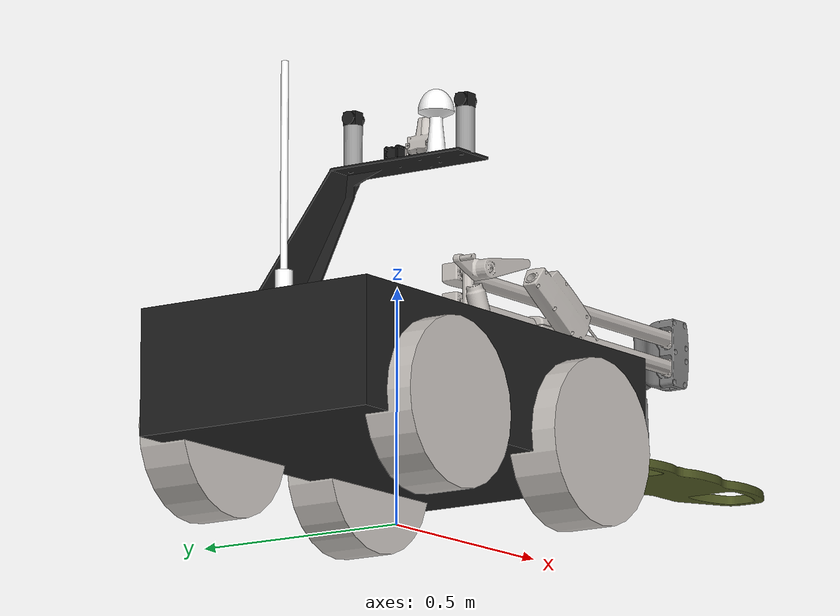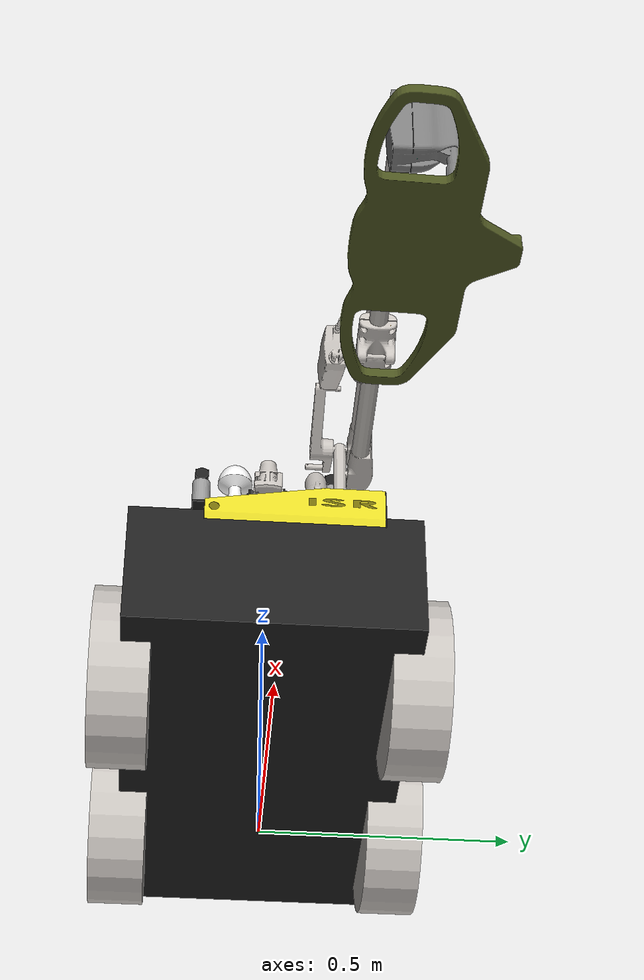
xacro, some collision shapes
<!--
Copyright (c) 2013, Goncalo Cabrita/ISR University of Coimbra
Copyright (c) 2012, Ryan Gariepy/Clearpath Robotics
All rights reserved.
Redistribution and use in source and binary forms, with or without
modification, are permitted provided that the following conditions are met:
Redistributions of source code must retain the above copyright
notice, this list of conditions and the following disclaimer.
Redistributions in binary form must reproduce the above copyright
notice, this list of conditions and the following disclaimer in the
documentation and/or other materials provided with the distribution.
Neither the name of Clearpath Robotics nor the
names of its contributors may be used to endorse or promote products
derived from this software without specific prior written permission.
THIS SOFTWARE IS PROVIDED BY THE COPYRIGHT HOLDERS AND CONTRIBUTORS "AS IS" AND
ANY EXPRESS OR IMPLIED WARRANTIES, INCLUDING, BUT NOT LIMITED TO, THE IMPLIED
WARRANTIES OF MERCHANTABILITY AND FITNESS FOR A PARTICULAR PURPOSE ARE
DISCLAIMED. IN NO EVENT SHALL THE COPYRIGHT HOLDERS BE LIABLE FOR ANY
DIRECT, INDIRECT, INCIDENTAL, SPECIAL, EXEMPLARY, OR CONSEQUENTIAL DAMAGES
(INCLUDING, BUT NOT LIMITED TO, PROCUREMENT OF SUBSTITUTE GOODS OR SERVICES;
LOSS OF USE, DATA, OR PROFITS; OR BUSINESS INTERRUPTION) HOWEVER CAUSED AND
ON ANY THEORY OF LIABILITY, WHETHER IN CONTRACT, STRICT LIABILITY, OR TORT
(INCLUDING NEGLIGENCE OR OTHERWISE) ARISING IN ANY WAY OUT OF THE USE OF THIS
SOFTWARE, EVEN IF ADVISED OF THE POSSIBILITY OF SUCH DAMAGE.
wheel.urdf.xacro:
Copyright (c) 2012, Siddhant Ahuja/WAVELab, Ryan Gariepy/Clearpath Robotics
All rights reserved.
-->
<?xml version="1.0"?>

<robot

    xmlns:xi="http://www.w3.org/2001/XInclude"
    xmlns:gazebo="http://playerstage.sourceforge.net/gazebo/xmlschema/#gz"
    xmlns:model="http://playerstage.sourceforge.net/gazebo/xmlschema/#model"
    xmlns:sensor="http://playerstage.sourceforge.net/gazebo/xmlschema/#sensor"
    xmlns:body="http://playerstage.sourceforge.net/gazebo/xmlschema/#body"
    xmlns:geom="http://playerstage.sourceforge.net/gazebo/xmlschema/#geom"
    xmlns:joint="http://playerstage.sourceforge.net/gazebo/xmlschema/#joint"
    xmlns:controller="http://playerstage.sourceforge.net/gazebo/xmlschema/#controller"
    xmlns:interface="http://playerstage.sourceforge.net/gazebo/xmlschema/#interface"
    xmlns:rendering="http://playerstage.sourceforge.net/gazebo/xmlschema/#rendering"
    xmlns:renderable="http://playerstage.sourceforge.net/gazebo/xmlschema/#renderable"
    xmlns:physics="http://playerstage.sourceforge.net/gazebo/xmlschema/#physics"
    xmlns:xacro="http://ros.org/wiki/xacro" name="husky">

    <!-- Included URDF/XACRO Files -->
    <xacro:include filename="$(find hratc2017_framework)/urdf/husky_parts/materials.urdf.xacro" />
    <xacro:include filename="$(find hratc2017_framework)/urdf/husky_parts/wheel.urdf.xacro" />
    <xacro:include filename="$(find hratc2017_framework)/urdf/husky_parts/parts.urdf.xacro" />
    <xacro:include filename="$(find hratc2017_framework)/urdf/fsr_husky_parts/husky_bridge.urdf.xacro" />
    <xacro:include filename="$(find hratc2017_framework)/urdf/fsr_husky_parts/tim55x.urdf.xacro" />
    <xacro:include filename="$(find hratc2017_framework)/urdf/fsr_husky_parts/alfa_tube2h.urdf.xacro" />
    <xacro:include filename="$(find hratc2017_framework)/urdf/fsr_husky_parts/pointgrey_flea3.urdf.xacro" />
    <xacro:include filename="$(find hratc2017_framework)/urdf/fsr_husky_parts/gps_antenna.urdf.xacro" />
    <xacro:include filename="$(find hratc2017_framework)/urdf/fsr_husky_parts/tilt.urdf.xacro" />
    <xacro:include filename="$(find hratc2017_framework)/urdf/fsr_husky_parts/mti.urdf.xacro" />
    <xacro:include filename="$(find hratc2017_framework)/urdf/arm/fsr_husky_arm.urdf.xacro" />
    <xacro:include filename="$(find hratc2017_framework)/urdf/fsr_husky_parts/front_cover.urdf.xacro" />
    <xacro:include filename="$(find hratc2017_framework)/urdf/fsr_husky_parts/top_cover.urdf.xacro" />

    <!-- PROPERTY LIST -->
    <!--All units in m-kg-s-radians unit system -->
    <property name="M_PI" value="3.1415926535897931" />

    <!-- Main Body-base-->
    <!-- Location of com : center of mass -->
    <property name="base_x_com" value="-0.08748000" />
    <property name="base_y_com" value="-0.00085000" />
    <property name="base_z_com" value="0.09947000" />

    <!-- Size of the base-->
    <property name="base_x_size" value="0.98740000" />
    <property name="base_y_size" value="0.57090000" />
    <property name="base_z_size" value="0.24750000" />

    <!--Weight of the base-->
    <property name="base_mass" value="33.45489000" /> <!-- in kg-->

    <!--Inertial values for the base at center of mass, aligned with coordinate system. Units are kg*m^2-->
    <property name="base_ixx_com_cs" value="0.60216370" />
    <property name="base_ixy_com_cs" value="-0.02364198" />
    <property name="base_ixz_com_cs" value="-0.11972132" />
    <property name="base_iyy_com_cs" value="1.73859574" />
    <property name="base_iyz_com_cs" value="-0.00154437" />
    <property name="base_izz_com_cs" value="2.02955229" />

    <!-- BASE-FOOTPRINT -->
    <!-- base_footprint is a fictitious link(frame) that is on the ground right below base_link origin, navigation stack depends on this frame -->
    <link name="base_footprint">

        <visual>
            <origin xyz="0 0 0" rpy="0 0 0" />
            <geometry>
                <box size="0.001 0.001 0.001" />
            </geometry>
        </visual>
    </link>

    <gazebo reference="base_footprint">
        <turnGravityOff>false</turnGravityOff>
    </gazebo>

    <joint name="base_footprint_joint" type="fixed">
		<origin xyz="0 0 ${wheel_x_size/2 - base_z_origin_to_wheel_origin}" rpy="0 0 0" />
        <parent link="base_footprint"/>
        <child link="base_link" />
    </joint>

    <!-- BASE-LINK -->
    <!--Actual body/chassis of the robot-->
    <link name="base_link">
        <inertial>
            <mass value="${base_mass}" />
            <origin xyz="${base_x_com} ${base_y_com} ${base_z_com}" />
            <inertia ixx="${base_ixx_com_cs}" ixy="${base_ixy_com_cs}" ixz="${base_ixz_com_cs}"
                iyy="${base_iyy_com_cs}" iyz="${base_iyz_com_cs}" izz="${base_izz_com_cs}" />
        </inertial>

        <visual>
            <origin xyz="0 0 0" rpy="0 0 0" />
            <geometry>
		<mesh filename="package://hratc2017_framework/models/husky_parts/base_link.stl" />
            </geometry>
            <material name="Black" />
        </visual>

		<collision>
			<origin xyz="0 0 ${wheel_x_size/2 - base_z_origin_to_wheel_origin - 0.02}" rpy="0 0 0 " />
			<geometry>
				<box size = "${base_x_size+0.02} ${base_y_size} ${base_z_size + 0.02}"/> <!--making it slightly bigger in x and z direction-->
			</geometry>
		</collision>
    </link>
    <gazebo reference="base_link">
        <material>Gazebo/FlatBlack</material>
        <turnGravityOff>false</turnGravityOff>
    </gazebo>

    <!-- WHEEL macros -->
	<husky_wheel fb="back" lr="left" parent="base_link" translateX="-1" translateY="1" flipY="-1"/>
	<husky_wheel fb="back" lr="right" parent="base_link" translateX="-1" translateY="-1" flipY="-1"/>
	<husky_wheel fb="front" lr="left" parent="base_link" translateX="1" translateY="1" flipY="-1"/>
	<husky_wheel fb="front" lr="right" parent="base_link" translateX="1" translateY="-1" flipY="-1"/>

    <!-- DECORATIONS -->
    <!-- Top Plate -->
    <husky_part parent="base_footprint" name="top_plate" mesh="top_plate"
          colour="Yellow"
          translateX="0.0" translateY="0.0" translateZ="${wheel_x_size/2 - base_z_origin_to_wheel_origin}"
          rotateX="0.0" rotateY="0.0" rotateZ="0.0"/>
    <gazebo reference="base_footprint_top_plate_part">
        <material>Gazebo/Yellow</material>
    </gazebo>

    <!-- User Rail -->
    <husky_part parent="base_footprint" name="user_rail" mesh="user_rail"
          colour="DarkGray"
          translateX="0.272" translateY="0.0" translateZ="${0.245 + wheel_x_size/2 - base_z_origin_to_wheel_origin}"
          rotateX="0.0" rotateY="0.0" rotateZ="0.0"/>
    <gazebo reference="base_footprint_user_rail_part">
        <material>Gazebo/Grey</material>
    </gazebo>

    <!-- Bumpers -->
    <husky_part parent="base_footprint" name="rear_bumper" mesh="bumper"
          colour="DarkGray"
          translateX="-0.48" translateY="0.0" translateZ="${0.091 + wheel_x_size/2 - base_z_origin_to_wheel_origin}"
          rotateX="0.0" rotateY="0.0" rotateZ="3.14"/>
    <gazebo reference="base_footprint_rear_bumper_part">
        <material>Gazebo/FlatBlack</material>
    </gazebo>

    <gazebo>
	<plugin name="husky_diff_controller" filename="libhusky_gazebo_plugins.so">
	    <alwaysOn>true</alwaysOn>
            <updateRate>100.0</updateRate>
            <backLeftJoint>joint_back_left_wheel</backLeftJoint>
            <backRightJoint>joint_back_right_wheel</backRightJoint>
            <frontLeftJoint>joint_front_left_wheel</frontLeftJoint>
            <frontRightJoint>joint_front_right_wheel</frontRightJoint>
            <wheelSeparation>${base_y_size}</wheelSeparation>
            <wheelDiameter>${wheel_x_size}</wheelDiameter>
            <torque>35</torque>
        </plugin>
    </gazebo>

    <!-- FSR Husky Stuff -->

    <!-- BRIDGE macros -->
    <husky_bridge parent="base_link" x="-0.27" y="0" z="${base_z_size}" rx="0" ry="0" rz="0" />

    <!-- Top cover macros -->
    <top_cover parent="base_footprint" x="-0.18" y="0" z="${base_z_size}" rx="0" ry="0" rz="0" />

    <!-- Front cover macros -->
    <front_cover parent="base_footprint" x="0" y="0" z="${base_z_size}" rx="0" ry="0" rz="0" />

    <!-- MTi macro -->
    <mti parent="top_cover" x="0.2295" y="0.0" z="0.157" rx="0" ry="0" rz="0" />

    <!-- CAMERA macros -->
    <pointgrey_flea3 prefix="right" parent="husky_bridge" base_offset="-0.145" camera_offset="-0.00" camera_r="0" camera_p="0" camera_y="0" />
    <pointgrey_flea3 prefix="left" parent="husky_bridge" base_offset="0.145" camera_offset="0.00" camera_r="0" camera_p="0" camera_y="0" />

    <!-- Tilt macro -->
    <tilt parent="husky_bridge" x="0.0" y="-0.00601" z="-0.647711" rx="0" ry="0" rz="${M_PI/2}" />

    <!-- TIM macro -->
    <tim_55x parent="tilt_link" x="0.0" y="0.0" z="0.0" rx="0" ry="0" rz="0" />

    <!-- GPS macro -->
    <gps_antenna parent="husky_bridge" x="0" y="-0.07" z="0.0" rx="0" ry="0" rz="0" />

    <!-- WiFi Antenna -->
    <alfa_tube2h parent="husky_bridge" x="-0.21" y="0.17" z="-0.38" rx="0" ry="0" rz="0" />

    <!-- FSR Husky De-mining Arm -->
    <fsr_husky_arm parent="base_link" x="0.0" y="0.0" z="0.0" rx="0" ry="0" rz="${M_PI/2}" />

    <gazebo>
      <plugin name="gazebo_ros_control" filename="libgazebo_ros_control.so">
      </plugin>
    </gazebo>

</robot>

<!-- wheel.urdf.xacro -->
<robot xmlns:sensor="http://playerstage.sourceforge.net/gazebo/xmlschema/#sensor"
	xmlns:controller="http://playerstage.sourceforge.net/gazebo/xmlschema/#controller"
	xmlns:interface="http://playerstage.sourceforge.net/gazebo/xmlschema/#interface"
	xmlns:xacro="http://ros.org/wiki/xacro" name="husky_wheel">

	<property name="M_PI" value="3.14159"/>

	<!-- Wheel -->

	<property name="wheel_x_com" value="0.00000000" /> <!-- com : center of mass -->
	<property name="wheel_y_com" value="0.00000000" /> <!-- com : center of mass -->
	<property name="wheel_z_com" value="0.00019000" /> <!-- com : center of mass -->

	<property name="wheel_x_size" value="0.35550000" />
	<property name="wheel_y_size" value="0.35550000" />
	<property name="wheel_z_size" value="0.11430000" />

	<property name="wheel_mass" value="2.63657000" /> <!-- in kg-->

	<property name="wheel_ixx_com_cs" value="0.02466885" /> <!-- at center of mass aligned with coordinate system, kg*m^2-->
	<property name="wheel_ixy_com_cs" value="0.00000000" /> <!-- at center of mass aligned with coordinate system, kg*m^2-->
	<property name="wheel_ixz_com_cs" value="0.00000000" /> <!-- at center of mass aligned with coordinate system, kg*m^2-->
	<property name="wheel_iyy_com_cs" value="0.02466885" /> <!-- at center of mass aligned with coordinate system, kg*m^2-->
	<property name="wheel_iyz_com_cs" value="0.00000000" /> <!-- at center of mass aligned with coordinate system, kg*m^2-->
	<property name="wheel_izz_com_cs" value="0.04410576" /> <!-- at center of mass aligned with coordinate system, kg*m^2-->

	<property name="base_x_origin_to_wheel_origin" value="0.25600006" />
	<property name="base_y_origin_to_wheel_origin" value="0.285475" />
	<property name="base_z_origin_to_wheel_origin" value="0.03282508" />

	<xacro:macro name="husky_wheel" params="fb lr parent translateX translateY flipY"> <!--fb : front, back ; lr: left, right -->
		<link name="${fb}_${lr}_wheel">
			<inertial>
				<mass value="${wheel_mass}" />
				<origin xyz="${wheel_x_com} ${wheel_y_com} ${wheel_z_com}" />
				<inertia  ixx="${wheel_ixx_com_cs}" ixy="${wheel_ixy_com_cs}" ixz="${wheel_ixz_com_cs}"
					iyy="${wheel_iyy_com_cs}" iyz="${wheel_iyz_com_cs}" izz="${wheel_izz_com_cs}" />
			</inertial>
			<visual>
				<origin xyz="0 0 0" rpy="${flipY*M_PI} 0 0" />
				<geometry>
					<mesh filename="package://hratc2017_framework/models/husky_parts/wheel.stl" />
				</geometry>
				<material name="DarkGray" />
			</visual>
			<collision>
				<origin xyz="0 0 0" rpy="${flipY*M_PI/2} 0 0" />
				<geometry>
				    <cylinder length="${wheel_z_size}" radius="${wheel_x_size/2}" />
				</geometry>
			</collision>
		</link>

		<gazebo reference="${fb}_${lr}_wheel">
			<mu1 value="1.0"/>
			<mu2 value="1.0"/>
			<kp  value="10000000.0" />
			<kd  value="1.0" />
			<fdir1 value="1 0 0"/>
			<material>Gazebo/Grey</material>
			<turnGravityOff>false</turnGravityOff>
		</gazebo>

		<joint name="joint_${fb}_${lr}_wheel" type="continuous">
			<parent link="${parent}"/>
			<child link="${fb}_${lr}_wheel"/>
			<origin xyz="${translateX * base_x_origin_to_wheel_origin} ${translateY * base_y_origin_to_wheel_origin} ${base_z_origin_to_wheel_origin}" rpy="0 0 0" />
			<axis xyz="0 1 0" rpy="0 0 0" />
			<limit effort="100" velocity="100"/>
			<joint_properties damping="0.0" friction="0.0"/>
		</joint>

		<!-- Transmission is important to link the joints and the controller -->
		<transmission name="joint_${fb}_${lr}_wheel_trans">
			<type>transmission_interface/SimpleTransmission</type>
			<joint name="joint_${fb}_${lr}_wheel" >
			  <hardwareInterface>EffortJointInterface</hardwareInterface>
			  </joint>
			<actuator name="joint_${fb}_${lr}_wheel_motor">
			  <hardwareInterface>EffortJointInterface</hardwareInterface>
			  <mechanicalReduction>1</mechanicalReduction>
			  <motorTorqueConstant>1</motorTorqueConstant>
			</actuator>
		</transmission>

  	</xacro:macro>
</robot>

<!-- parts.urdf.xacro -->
<robot xmlns:sensor="http://playerstage.sourceforge.net/gazebo/xmlschema/#sensor"
	xmlns:controller="http://playerstage.sourceforge.net/gazebo/xmlschema/#controller"
	xmlns:interface="http://playerstage.sourceforge.net/gazebo/xmlschema/#interface"
	xmlns:xacro="http://ros.org/wiki/xacro" name="husky_part">

	<property name="x_com" value="0.00000000" /> <!-- com : center of mass -->
	<property name="y_com" value="0.00000000" /> <!-- com : center of mass -->
	<property name="z_com" value="0.00000000" /> <!-- com : center of mass -->

	<property name="x_size" value="1.0" />
	<property name="y_size" value="1.0" />
	<property name="z_size" value="1.0" />

	<property name="mass" value="0.1" /> <!-- in kg-->

	<property name="ixx_com_cs" value="0.01" /> <!-- at center of mass aligned with coordinate system, kg*m^2-->
	<property name="ixy_com_cs" value="0.0" /> <!-- at center of mass aligned with coordinate system, kg*m^2-->
	<property name="ixz_com_cs" value="0.0" /> <!-- at center of mass aligned with coordinate system, kg*m^2-->
	<property name="iyy_com_cs" value="0.01" /> <!-- at center of mass aligned with coordinate system, kg*m^2-->
	<property name="iyz_com_cs" value="0.00" /> <!-- at center of mass aligned with coordinate system, kg*m^2-->
	<property name="izz_com_cs" value="0.01" /> <!-- at center of mass aligned with coordinate system, kg*m^2-->

	<xacro:macro name="husky_part" params="parent name mesh colour translateX translateY translateZ rotateX rotateY rotateZ">

		<link name="${parent}_${name}_part">
			<inertial>
				<mass value="${mass}" />
				<origin xyz="${x_com} ${y_com} ${z_com}" />
				<inertia ixx="${ixx_com_cs}" ixy="${ixy_com_cs}" ixz="${ixz_com_cs}"
					iyy="${iyy_com_cs}" iyz="${iyz_com_cs}" izz="${izz_com_cs}" />
			</inertial>
			<visual>
				<origin xyz="0 0 0" rpy="0 0 0" />
				<geometry>
					<mesh filename="package://hratc2017_framework/models/husky_parts/${mesh}.stl" />
				</geometry>
				<material name="${colour}" />
			</visual>
			<collision>
				<origin xyz="0 0 0" rpy="0 0 0"/>
				<geometry>
					<box size="0.001 0.001 0.001" /> <!--the collision boundary for parts are taken into account by collision boundary of the base_link-->
				</geometry>
			</collision>
		</link>
		<joint name="${parent}_${name}_joint" type="fixed">
		    <origin xyz="${translateX} ${translateY} ${translateZ}"
		            rpy="${rotateX} ${rotateY} ${rotateZ}" />
		    <parent link="${parent}" />
		    <child link="${parent}_${name}_part" />
		</joint>

  	</xacro:macro>
</robot>

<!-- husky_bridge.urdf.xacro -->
<robot xmlns:sensor="http://playerstage.sourceforge.net/gazebo/xmlschema/#sensor"
	xmlns:controller="http://playerstage.sourceforge.net/gazebo/xmlschema/#controller"
	xmlns:interface="http://playerstage.sourceforge.net/gazebo/xmlschema/#interface"
	xmlns:xacro="http://ros.org/wiki/xacro" name="husky_bridge">

	<!-- Bridge -->

	<xacro:property name="husky_width" value="0.42" />
	<xacro:property name="husky_heigh" value="0.245" />
	<xacro:property name="scale_factor" value="0.001" />
	<xacro:property name="bridge_height" value="0.385" />

	<xacro:macro name="husky_bridge" params="parent x y z rx ry rz">
		<link name="husky_bridge">
			<inertial>
      				<origin xyz="1.3205E-08 -0.12511 0.1844" rpy="0 0 0" />
     				 <mass value="0.41909" />
      				<inertia
       					ixx="0.0062892349956719"
       				 	ixy="4.83251153522436E-09"
        				ixz="-1.00592277086129E-07"
        				iyy="-1.18429869738388E-05"
        				iyz="-0.0188452216523176"
        				izz="1.18429869738408E-05" />
    			</inertial>
			<visual>
      				<origin xyz="-0.31 ${-husky_width/2} ${-husky_heigh-bridge_height}" rpy="1.5708 0 1.5708" />
      				<geometry>
					<mesh filename="package://hratc2017_framework/models/fsr_husky_parts/bridge.STL" scale="${scale_factor} ${scale_factor} ${scale_factor}" />
      				</geometry>
      				<material name="Black" />
    			</visual>
			<collision>
      				<origin xyz="-0.31 ${-husky_width/2} ${-husky_heigh}" rpy="1.5708 0 1.5708" />
      				<geometry>
					<mesh filename="package://hratc2017_framework/models/fsr_husky_parts/bridge.STL" scale="${scale_factor} ${scale_factor} ${scale_factor}" />
      				</geometry>
    			</collision>
		</link>
		<gazebo reference="husky_bridge">
	        	<material>Gazebo/Black</material>
	        	<turnGravityOff>false</turnGravityOff>
    		</gazebo>

		<joint name="joint_husky_bridge" type="fixed">
			<parent link="${parent}"/>
			<child link="husky_bridge"/>
			<origin xyz="${x+0.31} ${y} ${z+bridge_height}" rpy="${rx} ${ry} ${rz}" />
		</joint>

  	</xacro:macro>
</robot>

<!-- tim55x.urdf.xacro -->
<robot xmlns:sensor="http://playerstage.sourceforge.net/gazebo/xmlschema/#sensor"
	xmlns:controller="http://playerstage.sourceforge.net/gazebo/xmlschema/#controller"
	xmlns:interface="http://playerstage.sourceforge.net/gazebo/xmlschema/#interface"
	xmlns:xacro="http://ros.org/wiki/xacro" name="tim_55x">

	<!-- SICK LMS100-->

	<xacro:include filename="$(find hratc2017_framework)/urdf/fsr_husky_parts/common.xacro" />

	<xacro:property name="scale_factor" value="0.001" />

	<xacro:property name="laser_x" value="0.105" />
	<xacro:property name="laser_y" value="0.102" />
	<xacro:property name="laser_z" value="0.152" />
	<xacro:property name="laser_mass" value="1.1" />

	<xacro:macro name="tim_55x" params="parent x y z rx ry rz">
  		<link name="tim_55x">
			<xacro:box_inertial x="${laser_x}" y="${laser_y}" z="${laser_z}" mass="${laser_mass}" />
			<visual>
				<origin xyz="-0.121 -0.075 -0.064" rpy="0 -1.5708 -1.5708" />
				<geometry>
					<mesh filename="package://hratc2017_framework/models/fsr_husky_parts/tim55x.STL" scale="${scale_factor} ${scale_factor} ${scale_factor}" />
				</geometry>
				<material name="DarkGray" />
  			</visual>
    			<collision>
				<origin xyz="-0.121 -0.075 -0.064" rpy="0 -1.5708 -1.5708" />
      				<geometry>
					<mesh filename="package://hratc2017_framework/models/fsr_husky_parts/tim55x.STL" scale="${scale_factor} ${scale_factor} ${scale_factor}" />
      				</geometry>
    			</collision>
  		</link>

		<joint name="joint_tim_55x" type="fixed">
		  <origin xyz="${x+0.054558} ${y+0.022286} ${z}" rpy="${rx+1.5708} ${ry+2.8361E-16} ${rz+1.6214}" />
		  <parent link="${parent}"/>
		  <child link="tim_55x" />
		  <axis xyz="0 0 0" />
		</joint>

		<gazebo reference="tim_55x">
			<material>Gazebo/Grey</material>
			<turnGravityOff>true</turnGravityOff>
    			<sensor type="ray" name="tim_55x">
      				<pose>0 0 0 0 0 0</pose>
      				<visualize>false</visualize>
     	 			<update_rate>15</update_rate>
      				<ray>
        				<scan>
          					<horizontal>
            						<samples>720</samples>
            						<resolution>1</resolution>
            						<min_angle>-1.570796</min_angle>
            						<max_angle>1.570796</max_angle>
          					</horizontal>
        				</scan>
        				<range>
          					<min>0.05</min>
          					<max>10.0</max>
          					<resolution>0.01</resolution>
        				</range>
        				<noise>
          					<type>gaussian</type>
          					<mean>0.0</mean>
          					<stddev>0.001</stddev>
        				</noise>
      				</ray>
      				<plugin name="gazebo_ros_laser" filename="libgazebo_ros_laser.so">
        				<topicName>scan</topicName>
        				<frameName>tim_55x</frameName>
      				</plugin>
    			</sensor>
  		</gazebo>

	</xacro:macro>
</robot>

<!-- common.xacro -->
<robot
  xmlns:xacro="http://ros.org/wiki/xacro">
  <property name="M_PI" value="3.1415926535897931" />

  <!-- see https://secure.wikimedia.org/wikipedia/en/wiki/List_of_moment_of_inertia_tensors -->
  <xacro:macro name="sphere_inertial" params="radius mass">
    <inertial>
      <mass value="${mass}" />
      <origin xyz="0 0 0" />
      <inertia ixx="${0.4 * mass * radius * radius}" ixy="0.0" ixz="0.0"
        iyy="${0.4 * mass * radius * radius}" iyz="0.0"
        izz="${0.4 * mass * radius * radius}" />
    </inertial>
  </xacro:macro>

  <xacro:macro name="cylinder_inertial" params="radius length mass">
    <inertial>
      <mass value="${mass}" />
      <origin xyz="0 0 0" />
      <inertia ixx="${0.0833333 * mass * (3 * radius * radius + length * length)}" ixy="0.0" ixz="0.0"
        iyy="${0.0833333 * mass * (3 * radius * radius + length * length)}" iyz="0.0"
        izz="${0.5 * mass * radius * radius}" />
    </inertial>
  </xacro:macro>

  <xacro:macro name="box_inertial" params="x y z mass">
    <inertial>
      <mass value="${mass}" />
      <origin xyz="0 0 0" />
      <inertia ixx="${0.0833333 * mass * (y*y + z*z)}" ixy="0.0" ixz="0.0"
        iyy="${0.0833333 * mass * (x*x + z*z)}" iyz="0.0"
        izz="${0.0833333 * mass * (x*x + y*y)}" />
    </inertial>
  </xacro:macro>
</robot>

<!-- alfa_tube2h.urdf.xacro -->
<robot xmlns:sensor="http://playerstage.sourceforge.net/gazebo/xmlschema/#sensor"
	xmlns:controller="http://playerstage.sourceforge.net/gazebo/xmlschema/#controller"
	xmlns:interface="http://playerstage.sourceforge.net/gazebo/xmlschema/#interface"
	xmlns:xacro="http://ros.org/wiki/xacro" name="alfa_tube2h">

	<!-- Alfa Tube 2H-->

	<xacro:include filename="$(find hratc2017_framework)/urdf/fsr_husky_parts/common.xacro" />

	<xacro:property name="alfa_length" value="0.132" />
	<xacro:property name="alfa_radius" value="0.019" />
	<xacro:property name="antenna_length" value="0.45" />
	<xacro:property name="antenna_radius" value="0.008" />

	<xacro:macro name="alfa_tube2h" params="parent x y z rx ry rz">
  		<link name="alfa_tube2h">
			<xacro:cylinder_inertial radius="${alfa_radius}" length="${alfa_length}" mass="0.100" />
			<visual>
      				<geometry>
        				<cylinder length="${alfa_length}" radius="${alfa_radius}"/>
      				</geometry>
				<origin rpy="0 0 0" xyz="0 0 0"/>
      				<material name="White">
        				<color rgba="1 1 1 1"/>
      				</material>
    			</visual>
    			<collision>
      				<geometry>
        				<cylinder length="${alfa_length}" radius="${alfa_radius}"/>
      				</geometry>
    			</collision>
  		</link>
		<gazebo reference="alfa_tube2h">
        		<material>Gazebo/White</material>
        		<turnGravityOff>false</turnGravityOff>
    		</gazebo>

		<joint name="joint_alfa_tub2h" type="fixed">
			<parent link="${parent}"/>
			<child link="alfa_tube2h"/>
			<origin xyz="${x} ${y} ${z+alfa_length/2}" rpy="${rx} ${ry} ${rz}" />
		</joint>

		<link name="wifi_antenna">
			<xacro:cylinder_inertial radius="${antenna_radius}" length="${antenna_length}" mass="0.100" />
			<visual>
      				<geometry>
        				<cylinder length="${antenna_length}" radius="${antenna_radius}"/>
      				</geometry>
				<origin rpy="0 0 0" xyz="0 0 0"/>
      				<material name="White"/>
    			</visual>
    			<collision>
      				<geometry>
        				<cylinder length="${antenna_length}" radius="${antenna_radius}"/>
      				</geometry>
    			</collision>
  		</link>
		<gazebo reference="wifi_antenna">
        		<material>Gazebo/White</material>
        		<turnGravityOff>false</turnGravityOff>
    		</gazebo>

		<joint name="joint_wifi_anetnna" type="fixed">
			<parent link="alfa_tube2h"/>
			<child link="wifi_antenna"/>
			<origin xyz="0 0 ${alfa_length/2+antenna_length/2}" rpy="0 0 0" />
		</joint>

	</xacro:macro>
</robot>

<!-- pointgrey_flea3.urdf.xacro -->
<robot xmlns:sensor="http://playerstage.sourceforge.net/gazebo/xmlschema/#sensor"
	xmlns:controller="http://playerstage.sourceforge.net/gazebo/xmlschema/#controller"
	xmlns:interface="http://playerstage.sourceforge.net/gazebo/xmlschema/#interface"
	xmlns:xacro="http://ros.org/wiki/xacro" name="pointgrey_flea3">

	<!-- PointGrey Flea 3 -->

	<xacro:include filename="$(find hratc2017_framework)/urdf/fsr_husky_parts/common.xacro" />

	<xacro:property name="base_x" value="0.001" />
	<xacro:property name="base_y" value="0.001" />
	<xacro:property name="base_z" value="0.001" />
 	<xacro:property name="standoff_length" value="0.100" />
	<xacro:property name="standoff_radius" value="0.020" />
	<xacro:property name="flea_size" value="0.03" />
	<xacro:property name="lense_length" value="0.04" />
	<xacro:property name="lense_radius" value="0.015" />

	<xacro:macro name="pointgrey_flea3" params="prefix parent base_offset camera_offset camera_r camera_p camera_y">

		<!-- Camera Base -->
		<link name="${prefix}_camera_base">
			<xacro:box_inertial x="${base_x}" y="${base_y}" z="${base_z}" mass="0.100" />
			<visual>
				<origin xyz="0 0 0" rpy="0 0 0" />
				<geometry>
					<box size="${base_x} ${base_y} ${base_z}"/>
				</geometry>
				<material name="Gray" />
  			</visual>
    			<collision>
      				<geometry>
        				<box size="${base_x} ${base_y} ${base_z}"/>
      				</geometry>
    			</collision>
  		</link>
		<gazebo reference="${prefix}_camera_base">
        		<material>Gazebo/Grey</material>
       			 <turnGravityOff>false</turnGravityOff>
    		</gazebo>

		<joint name="joint_${prefix}_camera_base" type="fixed">
			<parent link="${parent}"/>
			<child link="${prefix}_camera_base"/>
			<origin xyz="0 ${base_offset} 0" rpy="0 0 0" />
		</joint>

		<!-- Camera Standoff -->
		<link name="${prefix}_camera_standoff">
			<xacro:cylinder_inertial radius="${standoff_radius}" length="${standoff_length}" mass="0.100" />
			<visual>
				<origin xyz="0 0 0" rpy="0 0 0" />
				<geometry>
					<cylinder length="${standoff_length}" radius="${standoff_radius}"/>
				</geometry>
				<material name="Gray" />
  			</visual>
    			<collision>
      				<geometry>
        				<cylinder length="${standoff_length}" radius="${standoff_radius}"/>
      				</geometry>
    			</collision>
  		</link>
		<gazebo reference="${prefix}_camera_standoff">
        		<material>Gazebo/Grey</material>
       			 <turnGravityOff>false</turnGravityOff>
    		</gazebo>

		<joint name="joint_${prefix}_camera_standoff" type="fixed">
			<parent link="${prefix}_camera_base"/>
			<child link="${prefix}_camera_standoff"/>
			<origin xyz="0 ${camera_offset} ${standoff_length/2}" rpy="0 0 0" />
		</joint>

		<!-- PointGrey Flea3 Camera -->
  		<link name="${prefix}_camera">
			<xacro:box_inertial x="${flea_size}" y="${flea_size}" z="${flea_size}" mass="0.100" />
			<visual>
				<origin xyz="0 0 0" rpy="0 0 0" />
				<geometry>
					<box size="${flea_size} ${flea_size} ${flea_size}"/>
				</geometry>
				<material name="Black" />
  			</visual>
    			<collision>
      				<geometry>
        				<box size="${flea_size} ${flea_size} ${flea_size}"/>
      				</geometry>
    			</collision>
  		</link>
		<gazebo reference="${prefix}_camera">
        		<material>Gazebo/Black</material>
       			 <turnGravityOff>false</turnGravityOff>
    		</gazebo>

		<joint name="joint_${prefix}_camera" type="fixed">
			<parent link="${prefix}_camera_standoff"/>
			<child link="${prefix}_camera"/>
			<origin xyz="0 0 ${standoff_length/2+flea_size/2}" rpy="${camera_r} ${camera_p} ${camera_y}" />
		</joint>

		<!-- Camera Lense -->
		<link name="${prefix}_lense">
			<xacro:cylinder_inertial radius="${lense_radius}" length="${lense_length}" mass="0.100" />
			<visual>
      				<geometry>
        				<cylinder length="${lense_length}" radius="${lense_radius}"/>
      				</geometry>
				<origin rpy="0 1.57 0" xyz="0 0 -0.035"/>
      				<material name="Black"/>
    			</visual>
    			<collision>
      				<geometry>
        				<cylinder length="${lense_length}" radius="${lense_radius}"/>
      				</geometry>
    			</collision>
  		</link>

		<joint name="joint_${prefix}_lense" type="fixed">
			<parent link="${prefix}_camera"/>
			<child link="${prefix}_lense"/>
			<origin xyz="0 0 ${flea_size/2+lense_length/2}" rpy="${camera_r} ${camera_p} ${camera_y}" />
		</joint>

		<!-- camera -->
  		<gazebo reference="${prefix}_lense">
			<material>Gazebo/Black</material>
       			 <turnGravityOff>false</turnGravityOff>
    			<sensor type="camera" name="${prefix}_camera">
      				<update_rate>30.0</update_rate>
      				<camera name="${prefix}_pgr">
        				<horizontal_fov>1.3962634</horizontal_fov>
        				<image>
          					<width>800</width>
          					<height>800</height>
          					<format>R8G8B8</format>
        				</image>
        				<clip>
          					<near>0.02</near>
          					<far>300</far>
        				</clip>
        				<noise>
          					<type>gaussian</type>
          					<!-- Noise is sampled independently per pixel on each frame.
               					That pixel's noise value is added to each of its color channels, which at that point lie in the range [0,1]. -->
          					<mean>0.0</mean>
          					<stddev>0.007</stddev>
        				</noise>
      				</camera>
      				<plugin name="camera_controller" filename="libgazebo_ros_camera.so">
        				<alwaysOn>true</alwaysOn>
        				<updateRate>0.0</updateRate>
        				<cameraName>${prefix}_camera</cameraName>
       					<imageTopicName>image_raw</imageTopicName>
        				<cameraInfoTopicName>camera_info</cameraInfoTopicName>
        				<frameName>camera_link</frameName>
        				<hackBaseline>0.07</hackBaseline>
        				<distortionK1>0.0</distortionK1>
        				<distortionK2>0.0</distortionK2>
        				<distortionK3>0.0</distortionK3>
        				<distortionT1>0.0</distortionT1>
        				<distortionT2>0.0</distortionT2>
      				</plugin>
    			</sensor>
  		</gazebo>

	</xacro:macro>
</robot>

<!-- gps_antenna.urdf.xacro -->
<robot xmlns:sensor="http://playerstage.sourceforge.net/gazebo/xmlschema/#sensor"
	xmlns:controller="http://playerstage.sourceforge.net/gazebo/xmlschema/#controller"
	xmlns:interface="http://playerstage.sourceforge.net/gazebo/xmlschema/#interface"
	xmlns:xacro="http://ros.org/wiki/xacro" name="gps_antenna">

	<!-- GPS Antenna -->

	<xacro:include filename="$(find hratc2017_framework)/urdf/fsr_husky_parts/common.xacro" />

	<xacro:property name="alfa_length" value="0.132" />
	<xacro:property name="alfa_radius" value="0.019" />
	<xacro:property name="antenna_length" value="0.45" />
	<xacro:property name="antenna_radius" value="0.008" />

	<xacro:macro name="gps_antenna" params="parent x y z rx ry rz">
  		<link name="gps_antenna">
    			<inertial>
      				<origin xyz="0.035 1.27350000005198E-07 0.084899" rpy="0 0 0" />
      				<mass value="0.28321" />
      				<inertia
        				ixx="0.000632544028273332"
        				ixy="-4.4923388876054E-20"
        				ixz="1.07422508310795E-20"
        				iyy="1.26609361466704E-09"
        				iyz="-0.000632544028277925"
        				izz="-1.26609361462022E-09" />
    			</inertial>
    			<visual>
      				<origin xyz="-0.035 0 0" rpy="1.5708 0 0" />
      				<geometry>
					<mesh filename="package://hratc2017_framework/models/fsr_husky_parts/gps_antenna.stl" />
      				</geometry>
      				<material name="White">
        				<color rgba="1 1 1 1"/>
      				</material>
    			</visual>
    			<collision>
      				<origin xyz="-0.035 0 0" rpy="1.5708 0 0" />
      				<geometry>
					<mesh filename="package://hratc2017_framework/models/fsr_husky_parts/gps_antenna.stl" />
     			 	</geometry>
    			</collision>
  		</link>

		<joint name="gps_antenna_joint" type="fixed">
			<parent link="${parent}"/>
			<child link="gps_antenna"/>
			<origin xyz="${x} ${y} ${z}" rpy="${rx} ${ry} ${rz}" />
		</joint>

		<gazebo reference="gps_antenna">
        		<material>Gazebo/White</material>
        		<turnGravityOff>false</turnGravityOff>
		</gazebo>

		<gazebo>
			<plugin name="gazebo_ros_gps" filename="libgazebo_gps_plugin.so">
			  <updateRate>4.0</updateRate>
			  <bodyName>gps_antenna</bodyName>
			  <frameId>gps_antenna</frameId>
			  <topicName>/gps/fix</topicName>
			  <velocityTopicName>/gps/fix_velocity</velocityTopicName>
			  <offset>0 0 0</offset>
			  <drift>0.001 0.001 0.001</drift>
			  <gaussianNoise>0.01 0.01 0.01</gaussianNoise>
			  <velocityDrift>0 0 0</velocityDrift>
			  <velocityGaussianNoise>0.05 0.05 0.05</velocityGaussianNoise>
			</plugin>
    		</gazebo>

	</xacro:macro>
</robot>

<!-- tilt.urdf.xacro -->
<robot xmlns:sensor="http://playerstage.sourceforge.net/gazebo/xmlschema/#sensor"
	xmlns:controller="http://playerstage.sourceforge.net/gazebo/xmlschema/#controller"
	xmlns:interface="http://playerstage.sourceforge.net/gazebo/xmlschema/#interface"
	xmlns:xacro="http://ros.org/wiki/xacro" name="tilt">

	<!-- Tilt Module -->

	<xacro:macro name="tilt" params="parent x y z rx ry rz">
  		<link name="tilt_base_link">
    			<inertial>
      				<origin xyz="0.0460197853129896 -0.0345620367624565 0.673567143254325" rpy="0 0 0" />
      				<mass value="0.0585867274989263" />
      				<inertia
        				ixx="1.8665172785833E-05"
        				ixy="6.44836212134259E-06"
        				ixz="7.47656484874687E-06"
        				iyy="5.73777331599441E-05"
        				iyz="1.17404715762795E-06"
        				izz="6.00483041818136E-05" />
    			</inertial>
    			<visual>
      				<origin xyz="0 0 0" rpy="0 0 0" />
      				<geometry>
					<mesh filename="package://hratc2017_framework/models/fsr_husky_parts/tilt_base_link.STL" />
     	 			</geometry>
      				<material name="Black" />
    			</visual>
    			<collision>
      				<origin xyz="0 0 0" rpy="0 0 0" />
      				<geometry>
					<mesh filename="package://hratc2017_framework/models/fsr_husky_parts/tilt_base_link.STL" />
      				</geometry>
    			</collision>
  		</link>
		<gazebo reference="tilt_base_link">
        		<material>Gazebo/FlatBlack</material>
        		<turnGravityOff>false</turnGravityOff>
    		</gazebo>

		<joint name="tilt_base_joint" type="fixed">
			<parent link="${parent}"/>
			<child link="tilt_base_link"/>
			<origin xyz="${x} ${y} ${z}" rpy="${rx} ${ry} ${rz}" />
		</joint>

  		<link name="tilt_link">
    			<inertial>
      				<origin xyz="-0.00129015307949742 0.00224156872637131 0.000205265483947359" rpy="0 0 0" />
      				<mass value="0.00819465820673721" />
      				<inertia
        				ixx="5.89716130625059E-06"
        				ixy="-1.95459322632056E-07"
        				ixz="1.1148474535632E-08"
        				iyy="5.69442865488394E-06"
        				iyz="7.98441689224292E-10"
        				izz="1.51501714183501E-06" />
    			</inertial>
    			<visual>
      				<origin xyz="0 0 0" rpy="0 0 0" />
      				<geometry>
					<mesh filename="package://hratc2017_framework/models/fsr_husky_parts/tilt_link.STL" />
      				</geometry>
      				<material name="DarkGray" />
    			</visual>
    			<collision>
      				<origin xyz="0 0 0" rpy="0 0 0" />
      				<geometry>
					<mesh filename="package://hratc2017_framework/models/fsr_husky_parts/tilt_link.STL" />
      				</geometry>
    			</collision>
  		</link>
		<gazebo reference="tilt_link">
        		<material>Gazebo/FlatBlack</material>
        		<turnGravityOff>false</turnGravityOff>
    		</gazebo>

		<joint name="tilt_joint" type="revolute">
    			<origin xyz="0.0065635 -0.04414 0.67735" rpy="1.5708 -1.5202 1.5708" />
    			<parent link="tilt_base_link" />
    			<child link="tilt_link" />
    			<axis xyz="0 0 -1" />
    			<limit effort="6.0" lower="-0.5" upper="0.5" velocity="1.17" />
			<dynamics damping="0.008" friction="0.6" />
  		</joint>

	  <transmission name="tilt">
	    <type>transmission_interface/SimpleTransmission</type>
	    <joint name="tilt_joint">
	    <hardwareInterface>EffortJointInterface</hardwareInterface>
	    </joint>
	    <actuator name="tilt_motor">
	      <hardwareInterface>EffortJointInterface</hardwareInterface>
	      <mechanicalReduction>1</mechanicalReduction>
	    </actuator>
	  </transmission>

	</xacro:macro>
</robot>

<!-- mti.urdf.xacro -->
<robot xmlns:sensor="http://playerstage.sourceforge.net/gazebo/xmlschema/#sensor"
	xmlns:controller="http://playerstage.sourceforge.net/gazebo/xmlschema/#controller"
	xmlns:interface="http://playerstage.sourceforge.net/gazebo/xmlschema/#interface"
	xmlns:xacro="http://ros.org/wiki/xacro" name="mti">

	<xacro:include filename="$(find hratc2017_framework)/urdf/fsr_husky_parts/common.xacro" />

	<xacro:property name="mti_length" value="0.057" />
	<xacro:property name="mti_width" value="0.042" />
	<xacro:property name="mti_height" value="0.0235" />

	<xacro:macro name="mti" params="parent x y z rx ry rz">
  		<link name="base_imu">
			<xacro:box_inertial x="${mti_length}"  y="${mti_width}" z="${mti_height}" mass="0.052" />
			<visual>
      				<geometry>
        				<box size="${mti_length} ${mti_width} ${mti_height}"/>
      				</geometry>
				<origin rpy="0 0 0" xyz="0 0 0"/>
      				<material name="Orange">
        				<color rgba="1 0.4 0 1"/>
      				</material>
    			</visual>
    			<collision>
      				<geometry>
        				<box size="${mti_length} ${mti_width} ${mti_height}"/>
      				</geometry>
    			</collision>
  		</link>

		<joint name="base_imu_joint" type="fixed">
			<parent link="${parent}"/>
			<child link="base_imu"/>
			<origin xyz="${x} ${y} ${z+mti_height/2}" rpy="${rx} ${ry} ${rz}" />
		</joint>

		<gazebo reference="base_imu">
        		<material>Gazebo/Orange</material>
        		<turnGravityOff>false</turnGravityOff>
    		</gazebo>

		<gazebo>
		    <plugin name="gazebo_ros_imu" filename="libgazebo_ros_imu.so">
			<alwaysOn>true</alwaysOn>
			<bodyName>base_footprint</bodyName>
			<topicName>/imu/data</topicName>
			<serviceName>imu_service</serviceName>
			<gaussianNoise>0.0</gaussianNoise>
			<updateRate>30.0</updateRate>
		    </plugin>
		</gazebo>

	</xacro:macro>
</robot>

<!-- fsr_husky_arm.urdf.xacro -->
<robot xmlns:sensor="http://playerstage.sourceforge.net/gazebo/xmlschema/#sensor"
	xmlns:controller="http://playerstage.sourceforge.net/gazebo/xmlschema/#controller"
	xmlns:interface="http://playerstage.sourceforge.net/gazebo/xmlschema/#interface"
	xmlns:xacro="http://ros.org/wiki/xacro" name="fsr_husky_arm">
<xacro:macro name="fsr_husky_arm" params="parent x y z rx ry rz">

  <link
    name="base_arm_link">
    <inertial>
      <origin
        xyz="0.062584 0.18878 0.37271"
        rpy="0 0 0" />
      <mass
        value="2.5803" />
      <inertia
        ixx="0.0087778"
        ixy="-0.00034853"
        ixz="0.0010654"
        iyy="0.014921"
        iyz="-0.0021847"
        izz="0.01488" />
    </inertial>
    <visual>
      <origin
        xyz="0 0 0"
        rpy="0 0 0" />
      <geometry>
        <mesh
          filename="package://hratc2017_framework/models/arm/base_arm_link.STL" />
      </geometry>
      <material name="Black" />
    </visual>
    <collision>
      <origin
        xyz="0 0 0"
        rpy="0 0 0" />
      <geometry>
        <mesh
          filename="package://hratc2017_framework/models/arm/base_arm_link.STL" />
      </geometry>
    </collision>
  </link>
  <gazebo reference="base_arm_link">
        <material>Gazebo/Black</material>
	<selfCollide>false</selfCollide>
        <turnGravityOff>true</turnGravityOff>
    </gazebo>

  <joint name="arm_joint" type="fixed">
			<parent link="${parent}"/>
			<child link="base_arm_link"/>
			<origin xyz="${x} ${y} ${z}" rpy="${rx} ${ry} ${rz}" />
  </joint>

  <link
    name="arm_axel">
    <inertial>
      <origin
        xyz="-0.0045492 0.35516 -0.025701"
        rpy="0 0 0" />
      <mass
        value="0.49315" />
      <inertia
        ixx="0.0060272"
        ixy="-0.00056478"
        ixz="8.6784E-05"
        iyy="0.0010748"
        iyz="-0.00058695"
        izz="0.0064909" />
    </inertial>
    <visual>
      <origin
        xyz="0 0 0"
        rpy="0 0 0" />
      <geometry>
        <mesh
          filename="package://hratc2017_framework/models/arm/arm_axel.STL" />
      </geometry>
      <material
        name="DarkGray">
        <color
          rgba="0.776470588235294 0.756862745098039 0.737254901960784 1" />
      </material>
    </visual>
    <collision>
      <origin
        xyz="0 0 0"
        rpy="0 0 0" />
      <geometry>
        <mesh
          filename="package://hratc2017_framework/models/arm/arm_axel.STL" />
      </geometry>
    </collision>
  </link>
  <gazebo reference="arm_axel">
        <material>Gazebo/Grey</material>
        <selfCollide>false</selfCollide>
        <turnGravityOff>true</turnGravityOff>
    </gazebo>

  <joint
    name="arm_axel_joint"
    type="revolute">
    <origin
      xyz="0.12828 -0.4402 0.049088"
      rpy="1.5708 6.123E-17 1.5708" />
    <parent
      link="base_arm_link" />
    <child
      link="arm_axel" />
    <axis
      xyz="0 -1 0" />
    <limit
      lower="-1.5708"
      upper="3.06"
      effort="75"
      velocity="2" />
  </joint>

  <link
    name="upper_arm">
    <inertial>
      <origin
        xyz="9.76184988289996E-05 0.0241578589661459 0.355397722899461"
        rpy="0 0 0" />
      <mass
        value="0.326325490126923" />
      <inertia
        ixx="0.0322020258970473"
        ixy="-4.4638355127408E-08"
        ixz="1.53741858406116E-05"
        iyy="0.032199356997134"
        iyz="-0.000144641063316242"
        izz="9.23314207900664E-05" />
    </inertial>
    <visual>
      <origin
        xyz="0 0 0"
        rpy="0 0 0" />
      <geometry>
        <mesh
          filename="package://hratc2017_framework/models/arm/upper_arm.STL" />
      </geometry>
      <material
        name="DarkGray">
        <color
          rgba="0.776470588235294 0.756862745098039 0.737254901960784 1" />
      </material>
    </visual>
    <collision>
      <origin
        xyz="0 0 0"
        rpy="0 0 0" />
      <geometry>
        <mesh
          filename="package://hratc2017_framework/models/arm/upper_arm.STL" />
      </geometry>
    </collision>
  </link>
  <gazebo reference="upper_arm">
        <material>Gazebo/Grey</material>
        <selfCollide>false</selfCollide>
        <turnGravityOff>true</turnGravityOff>
    </gazebo>

  <joint
    name="upper_arm_joint"
    type="revolute">
    <origin
      xyz="0 0.44 0.011736"
      rpy="1.5708 0 -1.5708" />
    <parent
      link="arm_axel" />
    <child
      link="upper_arm" />
    <axis
      xyz="0 -1 0" />
    <limit
      lower="-0.5236"
      upper="0.16"
      effort="35"
      velocity="2" />
  </joint>

  <link
    name="metal_detector_arm">
    <inertial>
      <origin
        xyz="-0.0131202075717661 -0.0723031614133108 -0.0463889610764896"
        rpy="0 0 0" />
      <mass
        value="0.20115578586952" />
      <inertia
        ixx="0.00493443507445138"
        ixy="-0.000620294299504152"
        ixz="-0.000306843036961987"
        iyy="0.0014212633147968"
        iyz="0.00125817384513895"
        izz="0.00527185766074029" />
    </inertial>
    <visual>
      <origin
        xyz="0.0255 0.0026 -0.01050"
        rpy="-1.865 -0.1 -1" />
      <geometry>
        <mesh
          filename="package://hratc2017_framework/models/arm/metal_detector_arm.STL" />
      </geometry>
      <material
        name="DarkGray">
        <color
          rgba="0.494117647058824 0.494117647058824 0.494117647058824 1" />
      </material>
    </visual>
    <collision>
      <origin
        xyz="0.0255 0.0026 -0.01050"
        rpy="-1.865 -0.1 -1" />
      <geometry>
        <mesh
          filename="package://hratc2017_framework/models/arm/metal_detector_arm.STL" />
      </geometry>
    </collision>
  </link>
  <gazebo reference="metal_detector_arm">
        <material>Gazebo/Grey</material>
        <selfCollide>false</selfCollide>
        <turnGravityOff>true</turnGravityOff>
    </gazebo>

  <joint
    name="metal_detector_arm_joint"
    type="revolute">
    <mimic
      joint="upper_arm_joint"
      multiplier="-1" />
    <origin
      xyz="0.0 0.0344999999999998 0.8483340615005693"
      rpy="-1.5707963267949 1.140744854051 -1.26098072342103" />
    <parent
      link="upper_arm" />
    <child
      link="metal_detector_arm" />
    <axis
      xyz="0.397068061333986 -0.865669276483222 -0.30488302416088" />
	<limit
      lower="-0.5236"
      upper="0.16"
      effort="35"
      velocity="2" />
  </joint>

  <link
    name="metal_detector_antenna">
    <inertial>
      <origin
        xyz="0.124781096368378 -0.279414752184092 -0.122957072146209"
        rpy="0 0 0" />
      <mass
        value="0.80992798706323" />
      <inertia
        ixx="0.223638341370907"
        ixy="0.0140547266307369"
        ixz="0.0258666395393033"
        iyy="0.250461845552196"
        iyz="-0.0571594766057374"
        izz="0.0805524351506661" />
    </inertial>
    <visual>
      <origin
        xyz="0.026 0 -0.29"
        rpy="-1.9 -0.45 -1.45" />
      <geometry>
        <mesh
          filename="package://hratc2017_framework/models/arm/metal_detector_antenna.STL" />
      </geometry>
      <material
        name="ArmyGreen">
        <color
          rgba="0.3 0.332 0.128 1" />
      </material>
    </visual>
    <collision>
      <origin
        xyz="0.026 0 -0.29"
        rpy="-1.9 -0.45 -1.45" />
      <geometry>
        <mesh
          filename="package://hratc2017_framework/models/arm/metal_detector_antenna.STL" />
      </geometry>
    </collision>
  </link>
  <gazebo reference="metal_detector_antenna">
        <material>Gazebo/Green</material>
        <selfCollide>false</selfCollide>
        <turnGravityOff>true</turnGravityOff>
    </gazebo>

  <joint
    name="metal_detector_antenna_joint"
    type="fixed">
    <origin
      xyz="0.0350 -0.075 0.27"
      rpy="0.350 0 0.42" /> -->
    <parent
      link="metal_detector_arm" />
    <child
      link="metal_detector_antenna" />
    <axis
      xyz="0 0 0" />
  </joint>

  <link name="left_coil">
      <visual>
          <origin xyz="0 0 0" rpy="0 0 0" />
          <geometry>
              <box size="0.001 0.001 0.001" />
          </geometry>
      </visual>
  </link>

  <joint name="left_coil_joint" type="fixed">
      <origin xyz="0.18 -0.02 0.04" rpy="0 0 0" />
      <parent link="metal_detector_antenna"/>
      <child link="left_coil" />
  </joint>

  <link name="middle_coil">
      <visual>
          <origin xyz="0 0 0" rpy="0 0 0" />
          <geometry>
              <box size="0.001 0.001 0.001" />
          </geometry>
      </visual>
  </link>

  <joint name="middle_coil_joint" type="fixed">
      <origin xyz="0 -0.02 0.04" rpy="0 0 0" />
      <parent link="metal_detector_antenna"/>
      <child link="middle_coil" />
  </joint>

  <link name="right_coil">
      <visual>
          <origin xyz="0 0 0" rpy="0 0 0" />
          <geometry>
              <box size="0.001 0.001 0.001" />
          </geometry>
      </visual>
  </link>

  <joint name="right_coil_joint" type="fixed">
      <origin xyz="-0.18 -0.02 0.04" rpy="0 0 0" />
      <parent link="metal_detector_antenna"/>
      <child link="right_coil" />
  </joint>

  <link
    name="lower_arm">
    <inertial>
      <origin
        xyz="-0.234602780446024 -0.225204746125893 0.0031580399460546"
        rpy="0 0 0" />
      <mass
        value="0.326325490126923" />
      <inertia
        ixx="0.0167023392786261"
        ixy="0.0172620654204666"
        ixz="0.00171207285568604"
        iyy="0.0255068597107398"
        iyz="0.000242235271108958"
        izz="0.0382877611003989" />
    </inertial>
    <visual>
      <origin
        xyz="0 0 0"
        rpy="0 0 0" />
      <geometry>
        <mesh
          filename="package://hratc2017_framework/models/arm/lower_arm.STL" />
      </geometry>
      <material
        name="DarkGray">
        <color
          rgba="0.776470588235294 0.756862745098039 0.737254901960784 1" />
      </material>
    </visual>
    <collision>
      <origin
        xyz="0 0 0"
        rpy="0 0 0" />
      <geometry>
        <mesh
          filename="package://hratc2017_framework/models/arm/lower_arm.STL" />
      </geometry>
    </collision>
  </link>
  <gazebo reference="lower_arm">
        <material>Gazebo/Grey</material>
        <selfCollide>false</selfCollide>
        <turnGravityOff>true</turnGravityOff>
    </gazebo>

  <joint
    name="lower_arm_joint"
    type="revolute">
    <mimic
      joint="upper_arm_joint" />
    <origin
      xyz="0 0.375 0"
      rpy="3.1416 0 0.70689" />
    <parent
      link="arm_axel" />
    <child
      link="lower_arm" />
    <axis
      xyz="0 0 1" />
    <limit
      lower="-0.5236"
      upper="0.16"
      effort="35"
      velocity="2" />
	</joint>

  <!-- Transmissions -->
  <transmission name="lift">
    <type>transmission_interface/SimpleTransmission</type>
    <joint name="upper_arm_joint">
      <hardwareInterface>EffortJointInterface</hardwareInterface>
    </joint>
    <actuator name="lift_motor">
      <hardwareInterface>EffortJointInterface</hardwareInterface>
      <mechanicalReduction>1</mechanicalReduction>
    </actuator>
  </transmission>

  <transmission name="mimic_lift1">
    <type>transmission_interface/SimpleTransmission</type>
    <joint name="lower_arm_joint">
      <hardwareInterface>EffortJointInterface</hardwareInterface>
    </joint>
    <actuator name="mimic_lift_motor">
      <hardwareInterface>EffortJointInterface</hardwareInterface>
      <mechanicalReduction>1</mechanicalReduction>
    </actuator>
  </transmission>

  <transmission name="mirror_lift2">
    <type>transmission_interface/SimpleTransmission</type>
    <joint name="metal_detector_arm_joint">
      <hardwareInterface>EffortJointInterface</hardwareInterface>
    </joint>
    <actuator name="mirror_lift_motor">
      <hardwareInterface>EffortJointInterface</hardwareInterface>
      <mechanicalReduction>1</mechanicalReduction>
    </actuator>
  </transmission>

  <transmission name="sweep">
    <type>transmission_interface/SimpleTransmission</type>
    <joint name="arm_axel_joint">
      <hardwareInterface>EffortJointInterface</hardwareInterface>
    </joint>
    <actuator name="sweep_motor">
      <hardwareInterface>EffortJointInterface</hardwareInterface>
      <mechanicalReduction>1</mechanicalReduction>
    </actuator>
  </transmission>

  <!-- Gazebo mimic plugins -->
  <gazebo>
	<plugin name="mimic_plugin1" filename="libgazebo_mimic_plugin.so">
            <joint>upper_arm_joint</joint>
            <mimicJoint>lower_arm_joint</mimicJoint>
            <multiplier>1.0</multiplier>
        </plugin>
  </gazebo>

  <gazebo>
	<plugin name="mimic_plugin2" filename="libgazebo_mimic_plugin.so">
            <joint>upper_arm_joint</joint>
            <mimicJoint>metal_detector_arm_joint</mimicJoint>
            <multiplier>-1.0</multiplier>
        </plugin>
  </gazebo>

</xacro:macro>
</robot>

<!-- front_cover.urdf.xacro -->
<robot xmlns:sensor="http://playerstage.sourceforge.net/gazebo/xmlschema/#sensor"
	xmlns:controller="http://playerstage.sourceforge.net/gazebo/xmlschema/#controller"
	xmlns:interface="http://playerstage.sourceforge.net/gazebo/xmlschema/#interface"
	xmlns:xacro="http://ros.org/wiki/xacro" name="front_cover">

	<!-- Front Cover -->

  	<xacro:property name="scale_factor" value="0.001" />
	<xacro:property name="husky_width" value="0.42" />

	<xacro:macro name="front_cover" params="parent x y z rx ry rz">
		<link name="front_cover">
			<inertial>
      				<origin xyz="0 0 0.1844" rpy="0 0 0" />
     				 <mass value="0.41909" />
      				<inertia
       					ixx="0.0062892349956719"
       				 	ixy="4.83251153522436E-09"
        				ixz="-1.00592277086129E-07"
        				iyy="-1.18429869738388E-05"
        				iyz="-0.0188452216523176"
        				izz="1.18429869738408E-05" />
    			</inertial>
			<visual>
      				<origin xyz="0 ${-husky_width/2-0.002} -0.10" rpy="1.5708 0 1.5708" />
      				<geometry>
					<mesh filename="package://hratc2017_framework/models/fsr_husky_parts/front_cover.STL" scale="${scale_factor} ${scale_factor} ${scale_factor}" />
      				</geometry>
      				<material name="Yellow" />
    			</visual>
			<collision>
      				<origin xyz="0 ${-husky_width/2-0.002} -0.10" rpy="1.5708 0 1.5708" />
      				<geometry>
					<mesh filename="package://hratc2017_framework/models/fsr_husky_parts/front_cover.STL" scale="${scale_factor} ${scale_factor} ${scale_factor}" />
      				</geometry>
    			</collision>
		</link>
		<gazebo reference="front_cover">
	        	<material>Gazebo/Yellow</material>
	        	<turnGravityOff>false</turnGravityOff>
    		</gazebo>

		<joint name="joint_front_cover" type="fixed">
			<parent link="${parent}"/>
			<child link="front_cover"/>
			<origin xyz="${x} ${y} ${z}" rpy="${rx} ${ry} ${rz}" />
		</joint>

	</xacro:macro>
</robot>

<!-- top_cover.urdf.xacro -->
<robot xmlns:sensor="http://playerstage.sourceforge.net/gazebo/xmlschema/#sensor"
	xmlns:controller="http://playerstage.sourceforge.net/gazebo/xmlschema/#controller"
	xmlns:interface="http://playerstage.sourceforge.net/gazebo/xmlschema/#interface"
	xmlns:xacro="http://ros.org/wiki/xacro" name="top_cover">

	<!-- Top Cover -->

  	<xacro:property name="scale_factor" value="0.001" />
	<xacro:property name="husky_width" value="0.42" />

	<xacro:macro name="top_cover" params="parent x y z rx ry rz">
		<link name="top_cover">
			<inertial>
      				<origin xyz="0 0 0.1844" rpy="0 0 0" />
     				 <mass value="0.41909" />
      				<inertia
       					ixx="0.0062892349956719"
       				 	ixy="4.83251153522436E-09"
        				ixz="-1.00592277086129E-07"
        				iyy="-1.18429869738388E-05"
        				iyz="-0.0188452216523176"
        				izz="1.18429869738408E-05" />
    			</inertial>
			<visual>
      				<origin xyz="0.07 ${-husky_width/2-0.0025} -0.10" rpy="1.5708 0 1.5708" />
      				<geometry>
					<mesh filename="package://hratc2017_framework/models/fsr_husky_parts/top_cover.STL" scale="${scale_factor} ${scale_factor} ${scale_factor}" />
      				</geometry>
      				<material name="Yellow" />
    			</visual>
			<collision>
      				<origin xyz="0.0 ${-husky_width/2-0.0025} -0.10" rpy="1.5708 0 1.5708" />
      				<geometry>
					<mesh filename="package://hratc2017_framework/models/fsr_husky_parts/top_cover.STL" scale="${scale_factor} ${scale_factor} ${scale_factor}" />
      				</geometry>
    			</collision>
		</link>
		<gazebo reference="top_cover">
	        	<material>Gazebo/Yellow</material>
	        	<turnGravityOff>false</turnGravityOff>
    		</gazebo>

		<joint name="joint_top_cover" type="fixed">
			<parent link="${parent}"/>
			<child link="top_cover"/>
			<origin xyz="${x} ${y} ${z}" rpy="${rx} ${ry} ${rz}" />
		</joint>

	</xacro:macro>
</robot>
